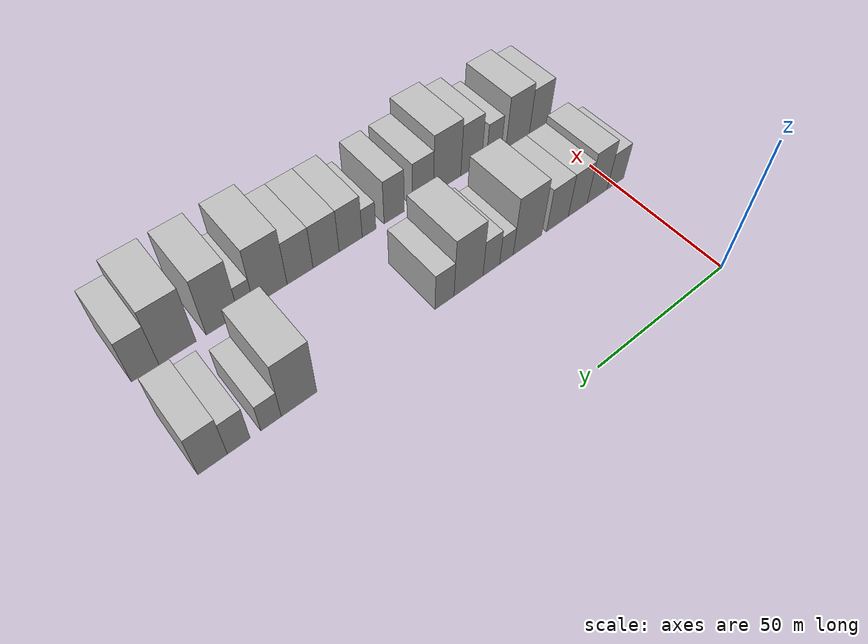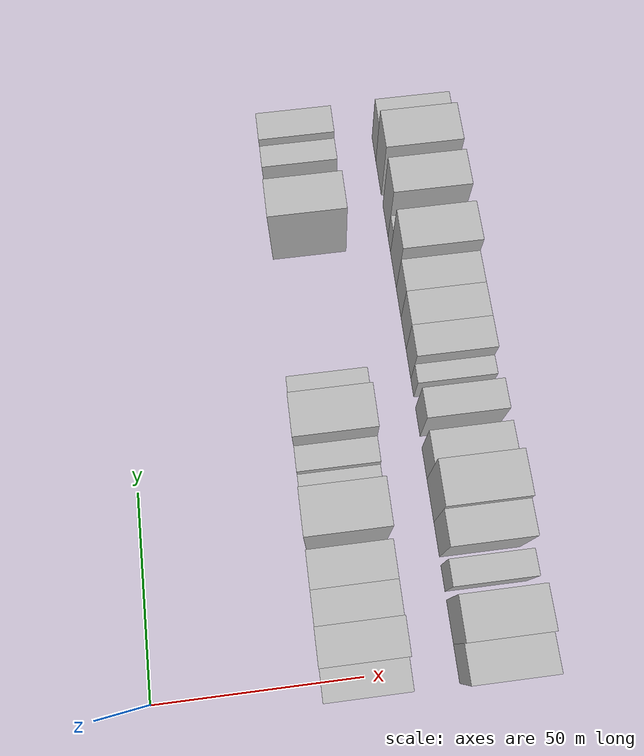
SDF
<sdf version="1.6">
 <world name="default">
  <model name="building_30">
   <static>1</static>
   <pose>50.0000 -0.2794 0 0.000000 0.000000 0.000000</pose>
   <link name="link">
    <pose>0 0 7.50 0 0 0</pose>
    <collision name="collision"><geometry><box><size>20.0000 7.3186 15.0000</size></box></geometry></collision>
    <visual name="visual">
     <cast_shadows>0</cast_shadows>
     <geometry><box><size>20.0000 7.3186 15.0000</size></box></geometry>
     <material>
      <script>
       <uri>model://HANNAS_wall/materials/scripts</uri>
       <uri>model://HANNAS_wall/materials/textures</uri>
       <name>vrc/HANNAS_wall</name>
      </script>
     </material>
    </visual>
   </link>
  </model>
  <model name="building_31">
   <static>1</static>
   <pose>50.0000 7.6886 0 0.000000 0.000000 0.000000</pose>
   <link name="link">
    <pose>0 0 10.50 0 0 0</pose>
    <collision name="collision"><geometry><box><size>20.0000 8.6175 21.0000</size></box></geometry></collision>
    <visual name="visual">
     <cast_shadows>0</cast_shadows>
     <geometry><box><size>20.0000 8.6175 21.0000</size></box></geometry>
     <material>
      <script>
       <uri>model://HANNAS_wall/materials/scripts</uri>
       <uri>model://HANNAS_wall/materials/textures</uri>
       <name>vrc/HANNAS_wall</name>
      </script>
     </material>
    </visual>
   </link>
  </model>
  <model name="building_32">
   <static>1</static>
   <pose>50.0000 15.9778 0 0.000000 0.000000 0.000000</pose>
   <link name="link">
    <pose>0 0 9.00 0 0 0</pose>
    <collision name="collision"><geometry><box><size>20.0000 7.9609 18.0000</size></box></geometry></collision>
    <visual name="visual">
     <cast_shadows>0</cast_shadows>
     <geometry><box><size>20.0000 7.9609 18.0000</size></box></geometry>
     <material>
      <script>
       <uri>model://HANNAS_wall/materials/scripts</uri>
       <uri>model://HANNAS_wall/materials/textures</uri>
       <name>vrc/HANNAS_wall</name>
      </script>
     </material>
    </visual>
   </link>
  </model>
  <model name="building_33">
   <static>1</static>
   <pose>50.0000 24.3910 0 0.000000 0.000000 0.000000</pose>
   <link name="link">
    <pose>0 0 9.00 0 0 0</pose>
    <collision name="collision"><geometry><box><size>20.0000 8.8656 18.0000</size></box></geometry></collision>
    <visual name="visual">
     <cast_shadows>0</cast_shadows>
     <geometry><box><size>20.0000 8.8656 18.0000</size></box></geometry>
     <material>
      <script>
       <uri>model://HANNAS_wall/materials/scripts</uri>
       <uri>model://HANNAS_wall/materials/textures</uri>
       <name>vrc/HANNAS_wall</name>
      </script>
     </material>
    </visual>
   </link>
  </model>
  <model name="building_34">
   <static>1</static>
   <pose>50.0000 36.4261 0 0.000000 0.000000 0.000000</pose>
   <link name="link">
    <pose>0 0 12.00 0 0 0</pose>
    <collision name="collision"><geometry><box><size>20.0000 11.2045 24.0000</size></box></geometry></collision>
    <visual name="visual">
     <cast_shadows>0</cast_shadows>
     <geometry><box><size>20.0000 11.2045 24.0000</size></box></geometry>
     <material>
      <script>
       <uri>model://HANNAS_wall/materials/scripts</uri>
       <uri>model://HANNAS_wall/materials/textures</uri>
       <name>vrc/HANNAS_wall</name>
      </script>
     </material>
    </visual>
   </link>
  </model>
  <model name="building_35">
   <static>1</static>
   <pose>50.0000 44.6338 0 0.000000 0.000000 0.000000</pose>
   <link name="link">
    <pose>0 0 6.00 0 0 0</pose>
    <collision name="collision"><geometry><box><size>20.0000 5.2108 12.0000</size></box></geometry></collision>
    <visual name="visual">
     <cast_shadows>0</cast_shadows>
     <geometry><box><size>20.0000 5.2108 12.0000</size></box></geometry>
     <material>
      <script>
       <uri>model://HANNAS_wall/materials/scripts</uri>
       <uri>model://HANNAS_wall/materials/textures</uri>
       <name>vrc/HANNAS_wall</name>
      </script>
     </material>
    </visual>
   </link>
  </model>
  <model name="building_36">
   <static>1</static>
   <pose>50.0000 50.3678 0 0.000000 0.000000 0.000000</pose>
   <link name="link">
    <pose>0 0 7.50 0 0 0</pose>
    <collision name="collision"><geometry><box><size>20.0000 6.2572 15.0000</size></box></geometry></collision>
    <visual name="visual">
     <cast_shadows>0</cast_shadows>
     <geometry><box><size>20.0000 6.2572 15.0000</size></box></geometry>
     <material>
      <script>
       <uri>model://HANNAS_wall/materials/scripts</uri>
       <uri>model://HANNAS_wall/materials/textures</uri>
       <name>vrc/HANNAS_wall</name>
      </script>
     </material>
    </visual>
   </link>
  </model>
  <model name="building_37">
   <static>1</static>
   <pose>50.0000 58.8005 0 0.000000 0.000000 0.000000</pose>
   <link name="link">
    <pose>0 0 12.00 0 0 0</pose>
    <collision name="collision"><geometry><box><size>20.0000 10.6083 24.0000</size></box></geometry></collision>
    <visual name="visual">
     <cast_shadows>0</cast_shadows>
     <geometry><box><size>20.0000 10.6083 24.0000</size></box></geometry>
     <material>
      <script>
       <uri>model://HANNAS_wall/materials/scripts</uri>
       <uri>model://HANNAS_wall/materials/textures</uri>
       <name>vrc/HANNAS_wall</name>
      </script>
     </material>
    </visual>
   </link>
  </model>
  <model name="building_38">
   <static>1</static>
   <pose>50.0000 67.4824 0 0.000000 0.000000 0.000000</pose>
   <link name="link">
    <pose>0 0 7.50 0 0 0</pose>
    <collision name="collision"><geometry><box><size>20.0000 6.7556 15.0000</size></box></geometry></collision>
    <visual name="visual">
     <cast_shadows>0</cast_shadows>
     <geometry><box><size>20.0000 6.7556 15.0000</size></box></geometry>
     <material>
      <script>
       <uri>model://HANNAS_wall/materials/scripts</uri>
       <uri>model://HANNAS_wall/materials/textures</uri>
       <name>vrc/HANNAS_wall</name>
      </script>
     </material>
    </visual>
   </link>
  </model>
  <model name="building_39">
   <static>1</static>
   <pose>50.0000 114.7980 0 0.000000 0.000000 0.000000</pose>
   <link name="link">
    <pose>0 0 12.00 0 0 0</pose>
    <collision name="collision"><geometry><box><size>20.0000 10.6252 24.0000</size></box></geometry></collision>
    <visual name="visual">
     <cast_shadows>0</cast_shadows>
     <geometry><box><size>20.0000 10.6252 24.0000</size></box></geometry>
     <material>
      <script>
       <uri>model://HANNAS_wall/materials/scripts</uri>
       <uri>model://HANNAS_wall/materials/textures</uri>
       <name>vrc/HANNAS_wall</name>
      </script>
     </material>
    </visual>
   </link>
  </model>
  <model name="building_40">
   <static>1</static>
   <pose>50.0000 123.1017 0 0.000000 0.000000 0.000000</pose>
   <link name="link">
    <pose>0 0 6.00 0 0 0</pose>
    <collision name="collision"><geometry><box><size>20.0000 5.9823 12.0000</size></box></geometry></collision>
    <visual name="visual">
     <cast_shadows>0</cast_shadows>
     <geometry><box><size>20.0000 5.9823 12.0000</size></box></geometry>
     <material>
      <script>
       <uri>model://HANNAS_wall/materials/scripts</uri>
       <uri>model://HANNAS_wall/materials/textures</uri>
       <name>vrc/HANNAS_wall</name>
      </script>
     </material>
    </visual>
   </link>
  </model>
  <model name="building_41">
   <static>1</static>
   <pose>50.0000 132.2804 0 0.000000 0.000000 0.000000</pose>
   <link name="link">
    <pose>0 0 7.50 0 0 0</pose>
    <collision name="collision"><geometry><box><size>20.0000 6.3750 15.0000</size></box></geometry></collision>
    <visual name="visual">
     <cast_shadows>0</cast_shadows>
     <geometry><box><size>20.0000 6.3750 15.0000</size></box></geometry>
     <material>
      <script>
       <uri>model://HANNAS_wall/materials/scripts</uri>
       <uri>model://HANNAS_wall/materials/textures</uri>
       <name>vrc/HANNAS_wall</name>
      </script>
     </material>
    </visual>
   </link>
  </model>
  <model name="building_42">
   <static>1</static>
   <pose>50.0000 139.5028 0 0.000000 0.000000 0.000000</pose>
   <link name="link">
    <pose>0 0 9.00 0 0 0</pose>
    <collision name="collision"><geometry><box><size>20.0000 8.0697 18.0000</size></box></geometry></collision>
    <visual name="visual">
     <cast_shadows>0</cast_shadows>
     <geometry><box><size>20.0000 8.0697 18.0000</size></box></geometry>
     <material>
      <script>
       <uri>model://HANNAS_wall/materials/scripts</uri>
       <uri>model://HANNAS_wall/materials/textures</uri>
       <name>vrc/HANNAS_wall</name>
      </script>
     </material>
    </visual>
   </link>
  </model>
  <model name="building_85">
   <static>1</static>
   <pose>82.0000 0.1891 0 0.000000 0.000000 0.000000</pose>
   <link name="link">
    <pose>0 0 9.00 0 0 0</pose>
    <collision name="collision"><geometry><box><size>20.0000 8.8460 18.0000</size></box></geometry></collision>
    <visual name="visual">
     <cast_shadows>0</cast_shadows>
     <geometry><box><size>20.0000 8.8460 18.0000</size></box></geometry>
     <material>
      <script>
       <uri>model://HANNAS_wall/materials/scripts</uri>
       <uri>model://HANNAS_wall/materials/textures</uri>
       <name>vrc/HANNAS_wall</name>
      </script>
     </material>
    </visual>
   </link>
  </model>
  <model name="building_86">
   <static>1</static>
   <pose>82.0000 9.7222 0 0.000000 0.000000 0.000000</pose>
   <link name="link">
    <pose>0 0 10.50 0 0 0</pose>
    <collision name="collision"><geometry><box><size>20.0000 10.2203 21.0000</size></box></geometry></collision>
    <visual name="visual">
     <cast_shadows>0</cast_shadows>
     <geometry><box><size>20.0000 10.2203 21.0000</size></box></geometry>
     <material>
      <script>
       <uri>model://HANNAS_wall/materials/scripts</uri>
       <uri>model://HANNAS_wall/materials/textures</uri>
       <name>vrc/HANNAS_wall</name>
      </script>
     </material>
    </visual>
   </link>
  </model>
  <model name="building_87">
   <static>1</static>
   <pose>82.0000 19.9514 0 0.000000 0.000000 0.000000</pose>
   <link name="link">
    <pose>0 0 7.50 0 0 0</pose>
    <collision name="collision"><geometry><box><size>20.0000 6.2381 15.0000</size></box></geometry></collision>
    <visual name="visual">
     <cast_shadows>0</cast_shadows>
     <geometry><box><size>20.0000 6.2381 15.0000</size></box></geometry>
     <material>
      <script>
       <uri>model://HANNAS_wall/materials/scripts</uri>
       <uri>model://HANNAS_wall/materials/textures</uri>
       <name>vrc/HANNAS_wall</name>
      </script>
     </material>
    </visual>
   </link>
  </model>
  <model name="building_88">
   <static>1</static>
   <pose>82.0000 29.3244 0 0.000000 0.000000 0.000000</pose>
   <link name="link">
    <pose>0 0 10.50 0 0 0</pose>
    <collision name="collision"><geometry><box><size>20.0000 8.5079 21.0000</size></box></geometry></collision>
    <visual name="visual">
     <cast_shadows>0</cast_shadows>
     <geometry><box><size>20.0000 8.5079 21.0000</size></box></geometry>
     <material>
      <script>
       <uri>model://HANNAS_wall/materials/scripts</uri>
       <uri>model://HANNAS_wall/materials/textures</uri>
       <name>vrc/HANNAS_wall</name>
      </script>
     </material>
    </visual>
   </link>
  </model>
  <model name="building_89">
   <static>1</static>
   <pose>82.0000 39.0134 0 0.000000 0.000000 0.000000</pose>
   <link name="link">
    <pose>0 0 12.00 0 0 0</pose>
    <collision name="collision"><geometry><box><size>20.0000 10.8700 24.0000</size></box></geometry></collision>
    <visual name="visual">
     <cast_shadows>0</cast_shadows>
     <geometry><box><size>20.0000 10.8700 24.0000</size></box></geometry>
     <material>
      <script>
       <uri>model://HANNAS_wall/materials/scripts</uri>
       <uri>model://HANNAS_wall/materials/textures</uri>
       <name>vrc/HANNAS_wall</name>
      </script>
     </material>
    </visual>
   </link>
  </model>
  <model name="building_90">
   <static>1</static>
   <pose>82.0000 48.5126 0 0.000000 0.000000 0.000000</pose>
   <link name="link">
    <pose>0 0 9.00 0 0 0</pose>
    <collision name="collision"><geometry><box><size>20.0000 8.1285 18.0000</size></box></geometry></collision>
    <visual name="visual">
     <cast_shadows>0</cast_shadows>
     <geometry><box><size>20.0000 8.1285 18.0000</size></box></geometry>
     <material>
      <script>
       <uri>model://HANNAS_wall/materials/scripts</uri>
       <uri>model://HANNAS_wall/materials/textures</uri>
       <name>vrc/HANNAS_wall</name>
      </script>
     </material>
    </visual>
   </link>
  </model>
  <model name="building_91">
   <static>1</static>
   <pose>82.0000 59.3469 0 0.000000 0.000000 0.000000</pose>
   <link name="link">
    <pose>0 0 9.00 0 0 0</pose>
    <collision name="collision"><geometry><box><size>20.0000 7.5400 18.0000</size></box></geometry></collision>
    <visual name="visual">
     <cast_shadows>0</cast_shadows>
     <geometry><box><size>20.0000 7.5400 18.0000</size></box></geometry>
     <material>
      <script>
       <uri>model://HANNAS_wall/materials/scripts</uri>
       <uri>model://HANNAS_wall/materials/textures</uri>
       <name>vrc/HANNAS_wall</name>
      </script>
     </material>
    </visual>
   </link>
  </model>
  <model name="building_92">
   <static>1</static>
   <pose>82.0000 68.5817 0 0.000000 0.000000 0.000000</pose>
   <link name="link">
    <pose>0 0 6.00 0 0 0</pose>
    <collision name="collision"><geometry><box><size>20.0000 4.9296 12.0000</size></box></geometry></collision>
    <visual name="visual">
     <cast_shadows>0</cast_shadows>
     <geometry><box><size>20.0000 4.9296 12.0000</size></box></geometry>
     <material>
      <script>
       <uri>model://HANNAS_wall/materials/scripts</uri>
       <uri>model://HANNAS_wall/materials/textures</uri>
       <name>vrc/HANNAS_wall</name>
      </script>
     </material>
    </visual>
   </link>
  </model>
  <model name="building_93">
   <static>1</static>
   <pose>82.0000 75.1342 0 0.000000 0.000000 0.000000</pose>
   <link name="link">
    <pose>0 0 9.00 0 0 0</pose>
    <collision name="collision"><geometry><box><size>20.0000 8.1755 18.0000</size></box></geometry></collision>
    <visual name="visual">
     <cast_shadows>0</cast_shadows>
     <geometry><box><size>20.0000 8.1755 18.0000</size></box></geometry>
     <material>
      <script>
       <uri>model://HANNAS_wall/materials/scripts</uri>
       <uri>model://HANNAS_wall/materials/textures</uri>
       <name>vrc/HANNAS_wall</name>
      </script>
     </material>
    </visual>
   </link>
  </model>
  <model name="building_94">
   <static>1</static>
   <pose>82.0000 83.7065 0 0.000000 0.000000 0.000000</pose>
   <link name="link">
    <pose>0 0 9.00 0 0 0</pose>
    <collision name="collision"><geometry><box><size>20.0000 8.9689 18.0000</size></box></geometry></collision>
    <visual name="visual">
     <cast_shadows>0</cast_shadows>
     <geometry><box><size>20.0000 8.9689 18.0000</size></box></geometry>
     <material>
      <script>
       <uri>model://HANNAS_wall/materials/scripts</uri>
       <uri>model://HANNAS_wall/materials/textures</uri>
       <name>vrc/HANNAS_wall</name>
      </script>
     </material>
    </visual>
   </link>
  </model>
  <model name="building_95">
   <static>1</static>
   <pose>82.0000 92.5119 0 0.000000 0.000000 0.000000</pose>
   <link name="link">
    <pose>0 0 9.00 0 0 0</pose>
    <collision name="collision"><geometry><box><size>20.0000 8.6419 18.0000</size></box></geometry></collision>
    <visual name="visual">
     <cast_shadows>0</cast_shadows>
     <geometry><box><size>20.0000 8.6419 18.0000</size></box></geometry>
     <material>
      <script>
       <uri>model://HANNAS_wall/materials/scripts</uri>
       <uri>model://HANNAS_wall/materials/textures</uri>
       <name>vrc/HANNAS_wall</name>
      </script>
     </material>
    </visual>
   </link>
  </model>
  <model name="building_96">
   <static>1</static>
   <pose>82.0000 102.1869 0 0.000000 0.000000 0.000000</pose>
   <link name="link">
    <pose>0 0 12.00 0 0 0</pose>
    <collision name="collision"><geometry><box><size>20.0000 10.7083 24.0000</size></box></geometry></collision>
    <visual name="visual">
     <cast_shadows>0</cast_shadows>
     <geometry><box><size>20.0000 10.7083 24.0000</size></box></geometry>
     <material>
      <script>
       <uri>model://HANNAS_wall/materials/scripts</uri>
       <uri>model://HANNAS_wall/materials/textures</uri>
       <name>vrc/HANNAS_wall</name>
      </script>
     </material>
    </visual>
   </link>
  </model>
  <model name="building_97">
   <static>1</static>
   <pose>82.0000 109.9484 0 0.000000 0.000000 0.000000</pose>
   <link name="link">
    <pose>0 0 6.00 0 0 0</pose>
    <collision name="collision"><geometry><box><size>20.0000 4.8147 12.0000</size></box></geometry></collision>
    <visual name="visual">
     <cast_shadows>0</cast_shadows>
     <geometry><box><size>20.0000 4.8147 12.0000</size></box></geometry>
     <material>
      <script>
       <uri>model://HANNAS_wall/materials/scripts</uri>
       <uri>model://HANNAS_wall/materials/textures</uri>
       <name>vrc/HANNAS_wall</name>
      </script>
     </material>
    </visual>
   </link>
  </model>
  <model name="building_98">
   <static>1</static>
   <pose>82.0000 117.3427 0 0.000000 0.000000 0.000000</pose>
   <link name="link">
    <pose>0 0 12.00 0 0 0</pose>
    <collision name="collision"><geometry><box><size>20.0000 9.9739 24.0000</size></box></geometry></collision>
    <visual name="visual">
     <cast_shadows>0</cast_shadows>
     <geometry><box><size>20.0000 9.9739 24.0000</size></box></geometry>
     <material>
      <script>
       <uri>model://HANNAS_wall/materials/scripts</uri>
       <uri>model://HANNAS_wall/materials/textures</uri>
       <name>vrc/HANNAS_wall</name>
      </script>
     </material>
    </visual>
   </link>
  </model>
  <model name="building_99">
   <static>1</static>
   <pose>82.0000 130.7775 0 0.000000 0.000000 0.000000</pose>
   <link name="link">
    <pose>0 0 12.00 0 0 0</pose>
    <collision name="collision"><geometry><box><size>20.0000 10.8957 24.0000</size></box></geometry></collision>
    <visual name="visual">
     <cast_shadows>0</cast_shadows>
     <geometry><box><size>20.0000 10.8957 24.0000</size></box></geometry>
     <material>
      <script>
       <uri>model://HANNAS_wall/materials/scripts</uri>
       <uri>model://HANNAS_wall/materials/textures</uri>
       <name>vrc/HANNAS_wall</name>
      </script>
     </material>
    </visual>
   </link>
  </model>
  <model name="building_100">
   <static>1</static>
   <pose>82.0000 140.1203 0 0.000000 0.000000 0.000000</pose>
   <link name="link">
    <pose>0 0 9.00 0 0 0</pose>
    <collision name="collision"><geometry><box><size>20.0000 7.7899 18.0000</size></box></geometry></collision>
    <visual name="visual">
     <cast_shadows>0</cast_shadows>
     <geometry><box><size>20.0000 7.7899 18.0000</size></box></geometry>
     <material>
      <script>
       <uri>model://HANNAS_wall/materials/scripts</uri>
       <uri>model://HANNAS_wall/materials/textures</uri>
       <name>vrc/HANNAS_wall</name>
      </script>
     </material>
    </visual>
   </link>
  </model>
 </world>
</sdf>
